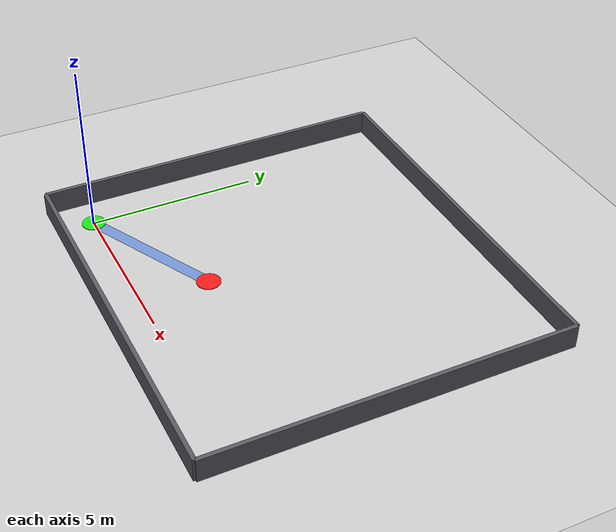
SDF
<?xml version="1.0" ?>
<sdf version="1.6">
  <world name="level1_map">
    <gravity>0 0 -9.8</gravity>
    <physics type="ode">
      <max_step_size>0.001</max_step_size>
      <real_time_factor>1.0</real_time_factor>
      <real_time_update_rate>1000</real_time_update_rate>
    </physics>

    <plugin name="gazebo_ros_state" filename="libgazebo_ros_state.so">
      <update_rate>50.0</update_rate>
    </plugin>

    <include>
      <uri>model://sun</uri>
    </include>
    <include>
      <uri>model://ground_plane</uri>
    </include>

    <!-- ========== 训练区围墙（薄墙，与默认 map_* 外扩约 0.2m）========== -->
    <!-- 内沿与 train_ppo 默认 map 对齐：x∈[-1,10.5], y∈[-1,9.5]，墙厚 0.12 -->
    <model name="l1_wall_south">
      <static>true</static>
      <pose>4.75 -1.06 0.35 0 0 0</pose>
      <link name="link">
        <collision name="c"><geometry><box><size>11.62 0.12 0.7</size></box></geometry></collision>
        <visual name="v">
          <geometry><box><size>11.62 0.12 0.7</size></box></geometry>
          <material>
            <ambient>0.22 0.22 0.24 1</ambient>
            <diffuse>0.35 0.35 0.38 1</diffuse>
          </material>
        </visual>
      </link>
    </model>
    <model name="l1_wall_north">
      <static>true</static>
      <pose>4.75 9.56 0.35 0 0 0</pose>
      <link name="link">
        <collision name="c"><geometry><box><size>11.62 0.12 0.7</size></box></geometry></collision>
        <visual name="v">
          <geometry><box><size>11.62 0.12 0.7</size></box></geometry>
          <material>
            <ambient>0.22 0.22 0.24 1</ambient>
            <diffuse>0.35 0.35 0.38 1</diffuse>
          </material>
        </visual>
      </link>
    </model>
    <model name="l1_wall_west">
      <static>true</static>
      <pose>-1.06 4.25 0.35 0 0 0</pose>
      <link name="link">
        <collision name="c"><geometry><box><size>0.12 10.62 0.7</size></box></geometry></collision>
        <visual name="v">
          <geometry><box><size>0.12 10.62 0.7</size></box></geometry>
          <material>
            <ambient>0.22 0.22 0.24 1</ambient>
            <diffuse>0.35 0.35 0.38 1</diffuse>
          </material>
        </visual>
      </link>
    </model>
    <model name="l1_wall_east">
      <static>true</static>
      <pose>10.56 4.25 0.35 0 0 0</pose>
      <link name="link">
        <collision name="c"><geometry><box><size>0.12 10.62 0.7</size></box></geometry></collision>
        <visual name="v">
          <geometry><box><size>0.12 10.62 0.7</size></box></geometry>
          <material>
            <ambient>0.22 0.22 0.24 1</ambient>
            <diffuse>0.35 0.35 0.38 1</diffuse>
          </material>
        </visual>
      </link>
    </model>

    <!-- ========== 起点 / 终点（与 Level0 风格一致，便于肉眼对齐）========== -->
    <model name="l1_start_marker">
      <static>true</static>
      <pose>0 0 0.01 0 0 0</pose>
      <link name="link">
        <visual name="visual">
          <geometry>
            <cylinder>
              <radius>0.35</radius>
              <length>0.02</length>
            </cylinder>
          </geometry>
          <material>
            <ambient>0.1 0.8 0.1 1</ambient>
            <diffuse>0.1 0.9 0.1 1</diffuse>
          </material>
        </visual>
      </link>
    </model>
    <model name="l1_goal_marker">
      <static>true</static>
      <pose>4 2 0.01 0 0 0</pose>
      <link name="link">
        <visual name="visual">
          <geometry>
            <cylinder>
              <radius>0.35</radius>
              <length>0.02</length>
            </cylinder>
          </geometry>
          <material>
            <ambient>0.85 0.1 0.1 1</ambient>
            <diffuse>0.95 0.1 0.1 1</diffuse>
          </material>
        </visual>
      </link>
    </model>

    <!-- ========== 地面路径提示（无 collision，仅示意主通路）========== -->
    <model name="l1_path_hint">
      <static>true</static>
      <pose>2.0 1.0 0.008 0 0 0.46365</pose>
      <link name="link">
        <visual name="v">
          <geometry><box><size>4.6 0.35 0.015</size></box></geometry>
          <material>
            <ambient>0.15 0.35 0.75 0.55</ambient>
            <diffuse>0.2 0.45 0.9 0.55</diffuse>
          </material>
        </visual>
      </link>
    </model>

    <gui fullscreen="0">
      <camera name="user_camera">
        <pose>5 -10 14 0 0.55 1.35</pose>
      </camera>
    </gui>
  </world>
</sdf>
